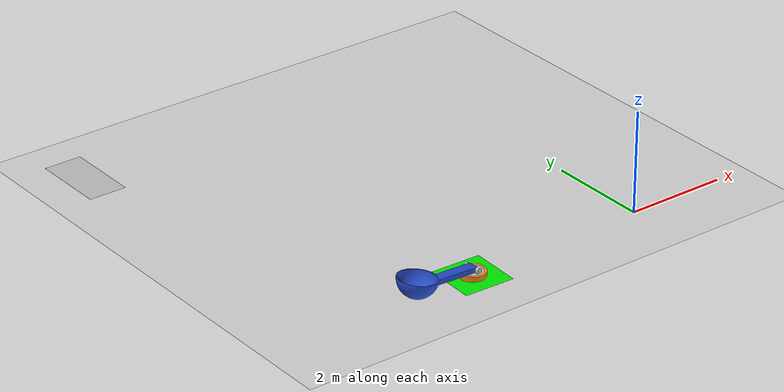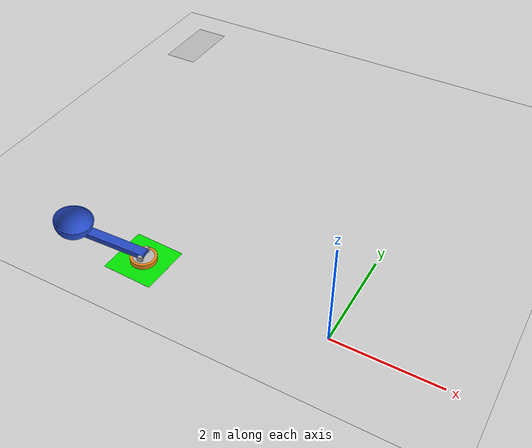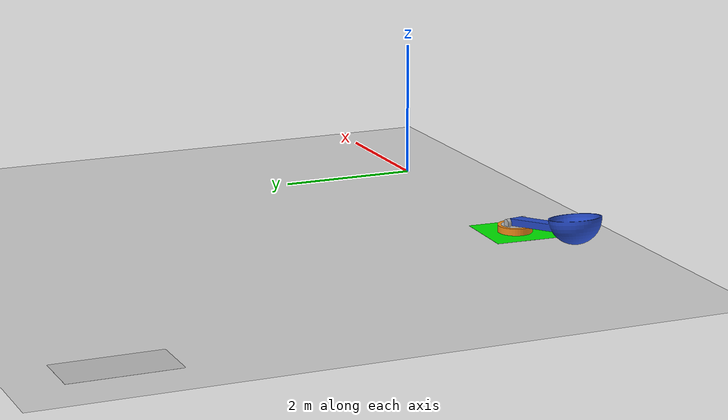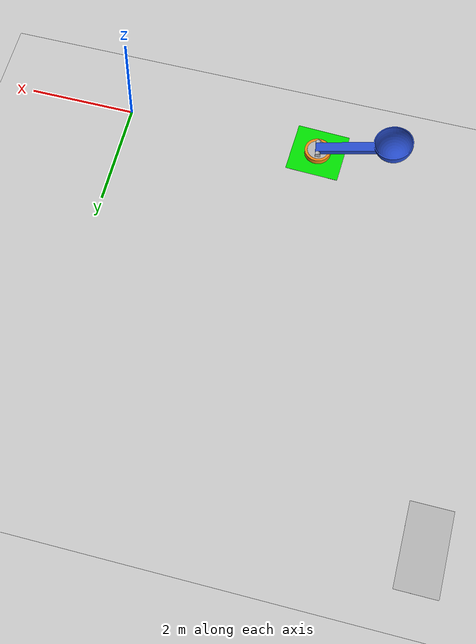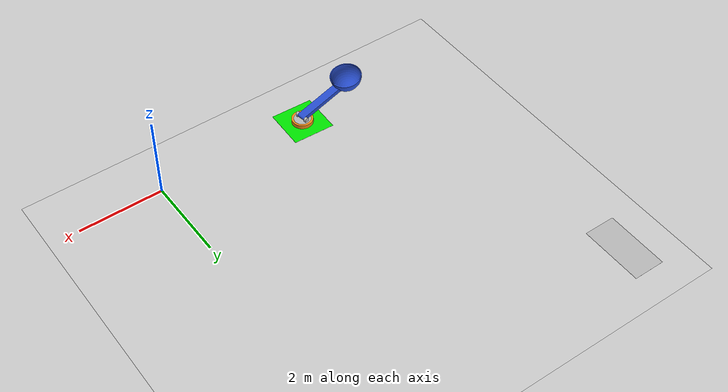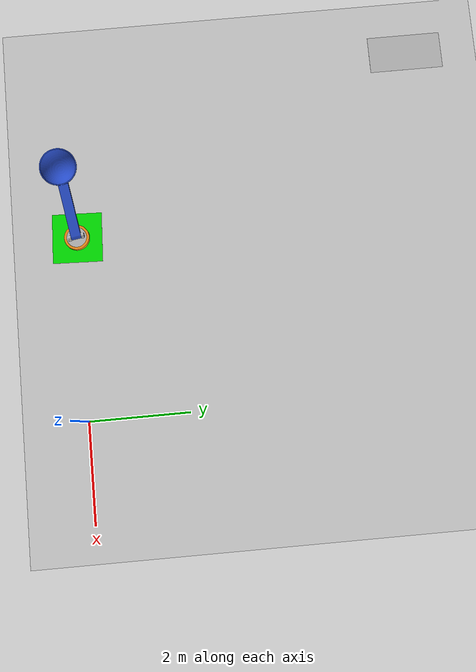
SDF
<sdf version="1.6">
 <world name="default">
  <model name="ground_plane">
   <static>1</static>
   <link name="link">
    <collision name="collision">
     <geometry><plane><normal>0 0 1</normal><size>100 100</size></plane></geometry>
     <surface><friction><ode><mu>100</mu><mu2>50</mu2></ode></friction></surface>
    </collision>
    <visual name="visual">
     <cast_shadows>0</cast_shadows>
     <geometry><plane><normal>0 0 1</normal><size>100 100</size></plane></geometry>
     <material>
      <script><uri>file://media/materials/scripts/gazebo.material</uri><name>Gazebo/Grey</name></script>
     </material>
    </visual>
   </link>
  </model>
  <model name="B_0">
   <static>1</static>
   <link name="link">
    <pose>0 0 1e-05 0 -0 0</pose>
    <collision name="collision">
     <geometry><plane><normal>0 0 1</normal><size>1.5 0.75</size></plane></geometry>
     <surface><friction><ode><mu>100</mu><mu2>50</mu2></ode></friction></surface>
    </collision>
    <visual name="visual">
     <cast_shadows>0</cast_shadows>
     <geometry><plane><normal>0 0 1</normal><size>0.75 1.5</size></plane></geometry>
     <material><script><uri>model://B/materials/scripts/B.material</uri><name>B/ground</name></script></material>
    </visual>
   </link>
   <pose>-7.00245 7.03347 0 0 -0 0</pose>
  </model>
  <model name="catapult">
   <link name="base_link">
    <inertial>
     <pose>0 0 0.037532 0 -0 0</pose>
     <mass>12.095</mass>
     <inertia>
      <ixx>0.2406</ixx>
      <ixy>-9.1075e-34</ixy>
      <ixz>-6.7067e-34</ixz>
      <iyy>0.2406</iyy>
      <iyz>-6.0663e-18</iyz>
      <izz>0.4628</izz>
     </inertia>
    </inertial>
    <visual name="base_link_visual">
     <geometry>
      <mesh><scale>1 1 1</scale><uri>/home/panyam/mybot_ws/src/hitter_pole/meshes/base_link.STL</uri></mesh>
     </geometry>
     <material>
      <emissive>1 0 0.1 0</emissive>
      <ambient>1 0.509 0.047 1</ambient>
      <diffuse>1 1 0.047 1</diffuse>
      <specular>1 1 0.5 1</specular>
      <script><name>Gazebo/Orange</name><uri>__default__</uri></script>
      <shader type="vertex"><normal_map>__default__</normal_map></shader>
     </material>
    </visual>
    <collision name="base_link_collision">
     <geometry>
      <mesh><uri>/home/panyam/mybot_ws/src/hitter_pole/meshes/base_link.STL</uri><scale>1 1 1</scale></mesh>
     </geometry>
     <surface>
      <friction>
       <ode><mu>1</mu><mu2>1</mu2><fdir1>0 0 0</fdir1><slip1>0</slip1><slip2>0</slip2></ode>
       <torsional>
        <coefficient>1</coefficient>
        <patch_radius>0</patch_radius>
        <surface_radius>0</surface_radius>
        <use_patch_radius>1</use_patch_radius>
        <ode><slip>0</slip></ode>
       </torsional>
      </friction>
      <bounce><restitution_coefficient>0</restitution_coefficient><threshold>1e+06</threshold></bounce>
      <contact>
       <collide_without_contact>0</collide_without_contact>
       <collide_without_contact_bitmask>1</collide_without_contact_bitmask>
       <collide_bitmask>1</collide_bitmask>
       <ode>
        <soft_cfm>0</soft_cfm>
        <soft_erp>0.2</soft_erp>
        <kp>1e+13</kp>
        <kd>1</kd>
        <max_vel>0.01</max_vel>
        <min_depth>0</min_depth>
       </ode>
       <bullet>
        <split_impulse>1</split_impulse>
        <split_impulse_penetration_threshold>-0.01</split_impulse_penetration_threshold>
        <soft_cfm>0</soft_cfm>
        <soft_erp>0.2</soft_erp>
        <kp>1e+13</kp>
        <kd>1</kd>
       </bullet>
      </contact>
     </surface>
    </collision>
   </link>
   <link name="arm_bowl">
    <inertial>
     <pose>-0.87531 -0.17061 0.2793 0 -0 0</pose>
     <mass>1</mass>
     <inertia>
      <ixx>1.5373</ixx>
      <ixy>-1.822</ixy>
      <ixz>1.4294</ixz>
      <iyy>1</iyy>
      <iyz>0.27861</iyz>
      <izz>1</izz>
     </inertia>
    </inertial>
    <visual name="arm_bowl_visual">
     <geometry>
      <mesh><scale>1 1 1</scale><uri>/home/panyam/mybot_ws/src/hitter_pole/meshes/arm_bowl.STL</uri></mesh>
     </geometry>
     <material>
      <ambient>0 0 1 0</ambient>
      <diffuse>1 1 0 0</diffuse>
      <specular>1 0.1 0.5 1</specular>
      <emissive>0 0 0.5 1</emissive>
      <script><name>Gazebo/Blue</name><uri>__default__</uri></script>
      <shader type="vertex"><normal_map>__default__</normal_map></shader>
     </material>
    </visual>
    <collision name="arm_bowl_collision">
     <geometry>
      <mesh><uri>/home/panyam/mybot_ws/src/hitter_pole/meshes/arm_bowl.STL</uri><scale>1 1 1</scale></mesh>
     </geometry>
     <surface>
      <friction>
       <ode><mu>1</mu><mu2>1</mu2><fdir1>0 0 0</fdir1><slip1>0</slip1><slip2>0</slip2></ode>
       <torsional>
        <coefficient>1</coefficient>
        <patch_radius>0</patch_radius>
        <surface_radius>0</surface_radius>
        <use_patch_radius>1</use_patch_radius>
        <ode><slip>0</slip></ode>
       </torsional>
      </friction>
      <bounce><restitution_coefficient>0</restitution_coefficient><threshold>1e+06</threshold></bounce>
      <contact>
       <collide_without_contact>0</collide_without_contact>
       <collide_without_contact_bitmask>1</collide_without_contact_bitmask>
       <collide_bitmask>1</collide_bitmask>
       <ode>
        <soft_cfm>0</soft_cfm>
        <soft_erp>0.2</soft_erp>
        <kp>1e+13</kp>
        <kd>1</kd>
        <max_vel>0.01</max_vel>
        <min_depth>0</min_depth>
       </ode>
       <bullet>
        <split_impulse>1</split_impulse>
        <split_impulse_penetration_threshold>-0.01</split_impulse_penetration_threshold>
        <soft_cfm>0</soft_cfm>
        <soft_erp>0.2</soft_erp>
        <kp>1e+13</kp>
        <kd>1</kd>
       </bullet>
      </contact>
     </surface>
    </collision>
   </link>
   <link name="link2">
    <inertial>
     <pose>0 -0 0.079372 0 -0 0</pose>
     <mass>8.6111</mass>
     <inertia>
      <ixx>0.10153</ixx>
      <ixy>0.0033108</ixy>
      <ixz>2.6986e-19</ixz>
      <iyy>0.085194</iyy>
      <iyz>-1.0662e-17</iyz>
      <izz>0.17002</izz>
     </inertia>
    </inertial>
    <visual name="link2_visual">
     <geometry>
      <mesh><scale>1 1 1</scale><uri>/home/panyam/mybot_ws/src/hitter_pole/meshes/link2.STL</uri></mesh>
     </geometry>
    </visual>
    <collision name="link2_collision">
     <geometry>
      <mesh><uri>/home/panyam/mybot_ws/src/hitter_pole/meshes/link2.STL</uri><scale>1 1 1</scale></mesh>
     </geometry>
     <surface>
      <friction>
       <ode><mu>1</mu><mu2>1</mu2><fdir1>0 0 0</fdir1><slip1>0</slip1><slip2>0</slip2></ode>
       <torsional>
        <coefficient>1</coefficient>
        <patch_radius>0</patch_radius>
        <surface_radius>0</surface_radius>
        <use_patch_radius>1</use_patch_radius>
        <ode><slip>0</slip></ode>
       </torsional>
      </friction>
      <bounce><restitution_coefficient>0</restitution_coefficient><threshold>1e+06</threshold></bounce>
      <contact>
       <collide_without_contact>0</collide_without_contact>
       <collide_without_contact_bitmask>1</collide_without_contact_bitmask>
       <collide_bitmask>1</collide_bitmask>
       <ode>
        <soft_cfm>0</soft_cfm>
        <soft_erp>0.2</soft_erp>
        <kp>1e+13</kp>
        <kd>1</kd>
        <max_vel>0.01</max_vel>
        <min_depth>0</min_depth>
       </ode>
       <bullet>
        <split_impulse>1</split_impulse>
        <split_impulse_penetration_threshold>-0.01</split_impulse_penetration_threshold>
        <soft_cfm>0</soft_cfm>
        <soft_erp>0.2</soft_erp>
        <kp>1e+13</kp>
        <kd>1</kd>
       </bullet>
      </contact>
     </surface>
    </collision>
   </link>
   <model name="target_plate">
    <link name="link">
     <inertial>
      <mass>1000</mass>
      <inertia>
       <ixx>0.166667</ixx>
       <ixy>0</ixy>
       <ixz>0</ixz>
       <iyy>0.166667</iyy>
       <iyz>0</iyz>
       <izz>0.166667</izz>
      </inertia>
     </inertial>
     <visual name="visual">
      <geometry><box><size>1 1 0.001</size></box></geometry>
      <material>
       <script><name>Gazebo/Grey</name><uri>file://media/materials/scripts/gazebo.material</uri></script>
       <ambient>0 0.9 0 1</ambient>
       <diffuse>0.7 0.7 0.7 1</diffuse>
       <specular>0.01 0.01 0.01 1</specular>
       <emissive>0 0 0 1</emissive>
       <shader type="vertex"><normal_map>__default__</normal_map></shader>
      </material>
     </visual>
     <collision name="collision">
      <geometry><box><size>1 1 0.001</size></box></geometry>
      <surface>
       <friction>
        <ode><mu>200</mu><mu2>200</mu2><fdir1>0 0 0</fdir1><slip1>0</slip1><slip2>0</slip2></ode>
        <torsional>
         <coefficient>1</coefficient>
         <patch_radius>0</patch_radius>
         <surface_radius>0</surface_radius>
         <use_patch_radius>1</use_patch_radius>
         <ode><slip>0</slip></ode>
        </torsional>
       </friction>
       <bounce><restitution_coefficient>0</restitution_coefficient><threshold>1e+06</threshold></bounce>
       <contact>
        <collide_without_contact>0</collide_without_contact>
        <collide_without_contact_bitmask>1</collide_without_contact_bitmask>
        <collide_bitmask>1</collide_bitmask>
        <ode>
         <soft_cfm>0</soft_cfm>
         <soft_erp>0.2</soft_erp>
         <kp>1e+13</kp>
         <kd>1</kd>
         <max_vel>0.01</max_vel>
         <min_depth>0</min_depth>
        </ode>
        <bullet>
         <split_impulse>1</split_impulse>
         <split_impulse_penetration_threshold>-0.01</split_impulse_penetration_threshold>
         <soft_cfm>0</soft_cfm>
         <soft_erp>0.2</soft_erp>
         <kp>1e+13</kp>
         <kd>1</kd>
        </bullet>
       </contact>
      </surface>
     </collision>
    </link>
    <static>0</static>
    <pose>-0.00426 -0.002535 -0 0 -0 0</pose>
   </model>
   <joint name="joint2" type="revolute">
    <parent>base_link</parent>
    <child>link2</child>
    <axis>
     <xyz>0 0 1</xyz>
     <use_parent_model_frame>1</use_parent_model_frame>
     <limit><lower>0</lower><upper>6.28</upper><effort>-1</effort><velocity>10</velocity></limit>
     <dynamics>
      <spring_reference>0</spring_reference>
      <spring_stiffness>0</spring_stiffness>
      <damping>0</damping>
      <friction>0</friction>
     </dynamics>
    </axis>
    <physics>
     <ode><limit><cfm>0</cfm><erp>0.2</erp></limit><suspension><cfm>0</cfm><erp>0.2</erp></suspension></ode>
    </physics>
   </joint>
   <joint name="link_JOINT_0" type="fixed">
    <parent>target_plate::link</parent>
    <child>base_link</child>
    <physics>
     <ode><limit><cfm>0</cfm><erp>0.2</erp></limit><suspension><cfm>0</cfm><erp>0.2</erp></suspension></ode>
    </physics>
   </joint>
   <joint name="throwing" type="revolute">
    <parent>link2</parent>
    <child>arm_bowl</child>
    <pose>0 0 0.1 0 -0 0</pose>
    <axis>
     <xyz>0.19132 -0.98153 0</xyz>
     <use_parent_model_frame>1</use_parent_model_frame>
     <limit><lower>-0.785</lower><upper>0.16</upper><effort>-1</effort><velocity>10</velocity></limit>
     <dynamics>
      <spring_reference>0</spring_reference>
      <spring_stiffness>0</spring_stiffness>
      <damping>0</damping>
      <friction>0</friction>
     </dynamics>
    </axis>
    <physics>
     <ode><limit><cfm>0</cfm><erp>0.2</erp></limit><suspension><cfm>0</cfm><erp>0.2</erp></suspension></ode>
    </physics>
   </joint>
   <static>0</static>
   <plugin name="gazebo_ros_control" filename="libgazebo_ros_control.so">
    <robotNamespace>/catapult</robotNamespace>
    <robotSimType>gazebo_ros_control/DefaultRobotHWSim</robotSimType>
    <legacyModeNS>true</legacyModeNS>
   </plugin>
   <pose>-3.67524 2e-05 -0.00025 0.001598 -0.00066 -0.036361</pose>
  </model>
 </world>
</sdf>
